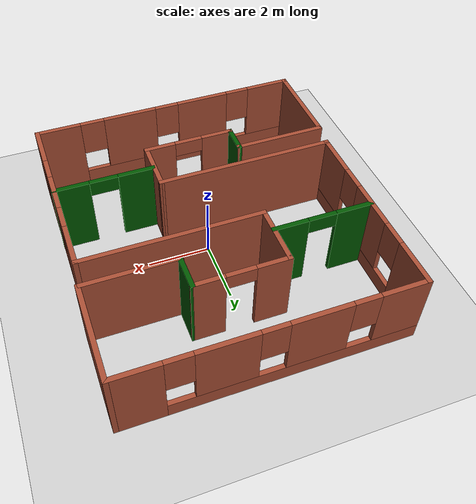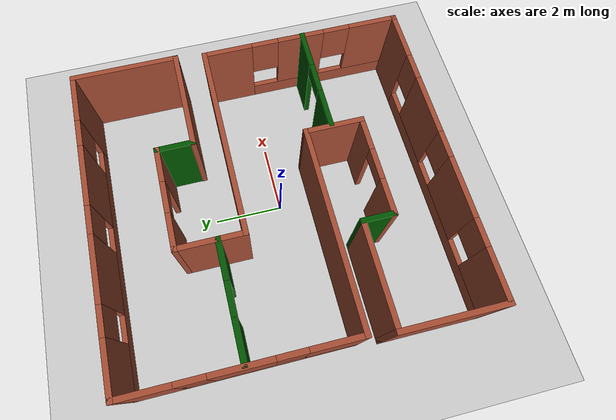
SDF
<sdf version="1.6">
 <world name="default">
  <light name="sun" type="directional">
   <pose>0 0 10 0 -0 0</pose>
   <diffuse>0.8 0.8 0.8 1</diffuse>
   <specular>0.2 0.2 0.2 1</specular>
   <attenuation>
    <range>1000</range>
    <constant>0.9</constant>
    <linear>0.01</linear>
    <quadratic>0.001</quadratic>
   </attenuation>
   <direction>-0.5 0.1 -0.9</direction>
  </light>
  <model name="ground_plane">
   <static>1</static>
   <link name="link">
    <collision name="collision">
     <geometry><plane><normal>0 0 1</normal><size>100 100</size></plane></geometry>
     <surface><friction><ode><mu>100</mu><mu2>50</mu2></ode></friction></surface>
    </collision>
    <visual name="visual">
     <cast_shadows>0</cast_shadows>
     <geometry><plane><normal>0 0 1</normal><size>100 100</size></plane></geometry>
     <material>
      <script><uri>file://media/materials/scripts/gazebo.material</uri><name>Gazebo/Grey</name></script>
     </material>
    </visual>
   </link>
  </model>
  <gravity>0 0 -9.8</gravity>
  <magnetic_field>6e-06 2.3e-05 -4.2e-05</magnetic_field>
  <atmosphere type="adiabatic"/>
  <physics name="default_physics" default="0" type="ode">
   <max_step_size>0.001</max_step_size>
   <real_time_factor>1</real_time_factor>
   <real_time_update_rate>1000</real_time_update_rate>
  </physics>
  <scene><ambient>0.4 0.4 0.4 1</ambient><background>0.7 0.7 0.7 1</background><shadows>1</shadows></scene>
  <spherical_coordinates>
   <surface_model>EARTH_WGS84</surface_model>
   <latitude_deg>0</latitude_deg>
   <longitude_deg>0</longitude_deg>
   <elevation>0</elevation>
   <heading_deg>0</heading_deg>
  </spherical_coordinates>
  <model name="MyWorld">
   <pose>-0.06346 0.25804 0 0 -0 0</pose>
   <link name="Wall_0">
    <collision name="Wall_0_Collision">
     <geometry><box><size>3 0.15 2.5</size></box></geometry>
     <pose>0 0 1.25 0 -0 0</pose>
    </collision>
    <visual name="Wall_0_Visual">
     <pose>0 0 1.25 0 -0 0</pose>
     <geometry><box><size>3 0.15 2.5</size></box></geometry>
     <material>
      <script><uri>file://media/materials/scripts/gazebo.material</uri><name>Gazebo/Bricks</name></script>
      <ambient>1 1 1 1</ambient>
     </material>
     <meta><layer>0</layer></meta>
    </visual>
    <pose>3.0376 1.84349 0 0 -0 0</pose>
   </link>
   <link name="Wall_1">
    <collision name="Wall_1_Collision">
     <geometry><box><size>3.156 0.15 2.5</size></box></geometry>
     <pose>0 0 1.25 0 -0 0</pose>
    </collision>
    <visual name="Wall_1_Visual">
     <pose>0 0 1.25 0 -0 0</pose>
     <geometry><box><size>3.156 0.15 2.5</size></box></geometry>
     <material>
      <script><uri>file://media/materials/scripts/gazebo.material</uri><name>Gazebo/Bricks</name></script>
      <ambient>1 1 1 1</ambient>
     </material>
     <meta><layer>0</layer></meta>
    </visual>
    <pose>4.47781 3.34647 0 0 -0 1.5708</pose>
   </link>
   <link name="Wall_10">
    <pose>4.37219 -1.92447 0 0 0 -1.5708</pose>
    <visual name="Wall_10_Visual_0">
     <pose>-2.25004 0 1.25 0 -0 0</pose>
     <geometry><box><size>1.49993 0.15 2.5</size></box></geometry>
     <material>
      <script><uri>file://media/materials/scripts/gazebo.material</uri><name>Gazebo/Bricks</name></script>
      <ambient>1 1 1 1</ambient>
     </material>
     <meta><layer>0</layer></meta>
    </visual>
    <collision name="Wall_10_Collision_0">
     <geometry><box><size>1.49993 0.15 2.5</size></box></geometry>
     <pose>-2.25004 0 1.25 0 -0 0</pose>
    </collision>
    <visual name="Wall_10_Visual_1">
     <pose>0.749964 0 0.25 0 -0 0</pose>
     <geometry><box><size>4.50007 0.15 0.5</size></box></geometry>
     <material>
      <script><uri>file://media/materials/scripts/gazebo.material</uri><name>Gazebo/Bricks</name></script>
      <ambient>1 1 1 1</ambient>
     </material>
     <meta><layer>0</layer></meta>
    </visual>
    <collision name="Wall_10_Collision_1">
     <geometry><box><size>4.50007 0.15 0.5</size></box></geometry>
     <pose>0.749964 0 0.25 0 -0 0</pose>
    </collision>
    <visual name="Wall_10_Visual_2">
     <pose>0.002562 0 1.5 0 -0 0</pose>
     <geometry><box><size>1.40527 0.15 2</size></box></geometry>
     <material>
      <script><uri>file://media/materials/scripts/gazebo.material</uri><name>Gazebo/Bricks</name></script>
      <ambient>1 1 1 1</ambient>
     </material>
     <meta><layer>0</layer></meta>
    </visual>
    <collision name="Wall_10_Collision_2">
     <geometry><box><size>1.40527 0.15 2</size></box></geometry>
     <pose>0.002562 0 1.5 0 -0 0</pose>
    </collision>
    <visual name="Wall_10_Visual_3">
     <pose>2.2526 0 1.5 0 -0 0</pose>
     <geometry><box><size>1.4948 0.15 2</size></box></geometry>
     <material>
      <script><uri>file://media/materials/scripts/gazebo.material</uri><name>Gazebo/Bricks</name></script>
      <ambient>1 1 1 1</ambient>
     </material>
     <meta><layer>0</layer></meta>
    </visual>
    <collision name="Wall_10_Collision_3">
     <geometry><box><size>1.4948 0.15 2</size></box></geometry>
     <pose>2.2526 0 1.5 0 -0 0</pose>
    </collision>
    <visual name="Wall_10_Visual_4">
     <pose>-1.10007 0 1.9 0 -0 0</pose>
     <geometry><box><size>0.8 0.15 1.2</size></box></geometry>
     <material>
      <script><uri>file://media/materials/scripts/gazebo.material</uri><name>Gazebo/Bricks</name></script>
      <ambient>1 1 1 1</ambient>
     </material>
     <meta><layer>0</layer></meta>
    </visual>
    <collision name="Wall_10_Collision_4">
     <geometry><box><size>0.8 0.15 1.2</size></box></geometry>
     <pose>-1.10007 0 1.9 0 -0 0</pose>
    </collision>
    <visual name="Wall_10_Visual_5">
     <pose>1.1052 0 1.9 0 -0 0</pose>
     <geometry><box><size>0.8 0.15 1.2</size></box></geometry>
     <material>
      <script><uri>file://media/materials/scripts/gazebo.material</uri><name>Gazebo/Bricks</name></script>
      <ambient>1 1 1 1</ambient>
     </material>
     <meta><layer>0</layer></meta>
    </visual>
    <collision name="Wall_10_Collision_5">
     <geometry><box><size>0.8 0.15 1.2</size></box></geometry>
     <pose>1.1052 0 1.9 0 -0 0</pose>
    </collision>
   </link>
   <link name="Wall_12">
    <pose>-0.052813 -4.84947 0 0 -0 3.14159</pose>
    <visual name="Wall_12_Visual_0">
     <pose>-3.74768 0 1.25 0 -0 0</pose>
     <geometry><box><size>1.50463 0.15 2.5</size></box></geometry>
     <material>
      <script><uri>file://media/materials/scripts/gazebo.material</uri><name>Gazebo/Bricks</name></script>
      <ambient>1 1 1 1</ambient>
     </material>
     <meta><layer>0</layer></meta>
    </visual>
    <collision name="Wall_12_Collision_0">
     <geometry><box><size>1.50463 0.15 2.5</size></box></geometry>
     <pose>-3.74768 0 1.25 0 -0 0</pose>
    </collision>
    <visual name="Wall_12_Visual_1">
     <pose>0.752316 0 0.25 0 -0 0</pose>
     <geometry><box><size>7.49537 0.15 0.5</size></box></geometry>
     <material>
      <script><uri>file://media/materials/scripts/gazebo.material</uri><name>Gazebo/Bricks</name></script>
      <ambient>1 1 1 1</ambient>
     </material>
     <meta><layer>0</layer></meta>
    </visual>
    <collision name="Wall_12_Collision_1">
     <geometry><box><size>7.49537 0.15 0.5</size></box></geometry>
     <pose>0.752316 0 0.25 0 -0 0</pose>
    </collision>
    <visual name="Wall_12_Visual_2">
     <pose>-1.29502 0 1.5 0 -0 0</pose>
     <geometry><box><size>1.8007 0.15 2</size></box></geometry>
     <material>
      <script><uri>file://media/materials/scripts/gazebo.material</uri><name>Gazebo/Bricks</name></script>
      <ambient>1 1 1 1</ambient>
     </material>
     <meta><layer>0</layer></meta>
    </visual>
    <collision name="Wall_12_Collision_2">
     <geometry><box><size>1.8007 0.15 2</size></box></geometry>
     <pose>-1.29502 0 1.5 0 -0 0</pose>
    </collision>
    <visual name="Wall_12_Visual_3">
     <pose>1.29807 0 1.5 0 -0 0</pose>
     <geometry><box><size>1.78549 0.15 2</size></box></geometry>
     <material>
      <script><uri>file://media/materials/scripts/gazebo.material</uri><name>Gazebo/Bricks</name></script>
      <ambient>1 1 1 1</ambient>
     </material>
     <meta><layer>0</layer></meta>
    </visual>
    <collision name="Wall_12_Collision_3">
     <geometry><box><size>1.78549 0.15 2</size></box></geometry>
     <pose>1.29807 0 1.5 0 -0 0</pose>
    </collision>
    <visual name="Wall_12_Visual_4">
     <pose>3.74541 0 1.5 0 -0 0</pose>
     <geometry><box><size>1.50918 0.15 2</size></box></geometry>
     <material>
      <script><uri>file://media/materials/scripts/gazebo.material</uri><name>Gazebo/Bricks</name></script>
      <ambient>1 1 1 1</ambient>
     </material>
     <meta><layer>0</layer></meta>
    </visual>
    <collision name="Wall_12_Collision_4">
     <geometry><box><size>1.50918 0.15 2</size></box></geometry>
     <pose>3.74541 0 1.5 0 -0 0</pose>
    </collision>
    <visual name="Wall_12_Visual_5">
     <pose>-2.59537 0 1.9 0 -0 0</pose>
     <geometry><box><size>0.8 0.15 1.2</size></box></geometry>
     <material>
      <script><uri>file://media/materials/scripts/gazebo.material</uri><name>Gazebo/Bricks</name></script>
      <ambient>1 1 1 1</ambient>
     </material>
     <meta><layer>0</layer></meta>
    </visual>
    <collision name="Wall_12_Collision_5">
     <geometry><box><size>0.8 0.15 1.2</size></box></geometry>
     <pose>-2.59537 0 1.9 0 -0 0</pose>
    </collision>
    <visual name="Wall_12_Visual_6">
     <pose>0.005328 0 1.9 0 -0 0</pose>
     <geometry><box><size>0.8 0.15 1.2</size></box></geometry>
     <material>
      <script><uri>file://media/materials/scripts/gazebo.material</uri><name>Gazebo/Bricks</name></script>
      <ambient>1 1 1 1</ambient>
     </material>
     <meta><layer>0</layer></meta>
    </visual>
    <collision name="Wall_12_Collision_6">
     <geometry><box><size>0.8 0.15 1.2</size></box></geometry>
     <pose>0.005328 0 1.9 0 -0 0</pose>
    </collision>
    <visual name="Wall_12_Visual_7">
     <pose>2.59082 0 1.9 0 -0 0</pose>
     <geometry><box><size>0.8 0.15 1.2</size></box></geometry>
     <material>
      <script><uri>file://media/materials/scripts/gazebo.material</uri><name>Gazebo/Bricks</name></script>
      <ambient>1 1 1 1</ambient>
     </material>
     <meta><layer>0</layer></meta>
    </visual>
    <collision name="Wall_12_Collision_7">
     <geometry><box><size>0.8 0.15 1.2</size></box></geometry>
     <pose>2.59082 0 1.9 0 -0 0</pose>
    </collision>
   </link>
   <link name="Wall_13">
    <collision name="Wall_13_Collision">
     <geometry><box><size>3 0.15 2.5</size></box></geometry>
     <pose>0 0 1.25 0 -0 0</pose>
    </collision>
    <visual name="Wall_13_Visual">
     <pose>0 0 1.25 0 -0 0</pose>
     <geometry><box><size>3 0.15 2.5</size></box></geometry>
     <material>
      <script><uri>file://media/materials/scripts/gazebo.material</uri><name>Gazebo/Bricks</name></script>
      <ambient>1 1 1 1</ambient>
     </material>
     <meta><layer>0</layer></meta>
    </visual>
    <pose>-4.47781 -3.42447 0 0 -0 1.5708</pose>
   </link>
   <link name="Wall_14">
    <collision name="Wall_14_Collision">
     <geometry><box><size>3 0.15 2.5</size></box></geometry>
     <pose>0 0 1.25 0 -0 0</pose>
    </collision>
    <visual name="Wall_14_Visual">
     <pose>0 0 1.25 0 -0 0</pose>
     <geometry><box><size>3 0.15 2.5</size></box></geometry>
     <material>
      <script><uri>file://media/materials/scripts/gazebo.material</uri><name>Gazebo/Bricks</name></script>
      <ambient>1 1 1 1</ambient>
     </material>
     <meta><layer>0</layer></meta>
    </visual>
    <pose>-3.05281 -1.99947 0 0 -0 0</pose>
   </link>
   <link name="Wall_15">
    <collision name="Wall_15_Collision">
     <geometry><box><size>1 0.15 2.5</size></box></geometry>
     <pose>0 0 1.25 0 -0 0</pose>
    </collision>
    <visual name="Wall_15_Visual">
     <pose>0 0 1.25 0 -0 0</pose>
     <geometry><box><size>1 0.15 2.5</size></box></geometry>
     <material>
      <script><uri>file://media/materials/scripts/gazebo.material</uri><name>Gazebo/Grey</name></script>
      <ambient>0 0.333333 0 1</ambient>
     </material>
     <meta><layer>0</layer></meta>
    </visual>
    <pose>-1.62781 -2.42447 0 0 0 -1.5708</pose>
   </link>
   <link name="Wall_16">
    <pose>-0.202813 -2.84947 0 0 -0 0</pose>
    <visual name="Wall_16_Visual_0">
     <pose>-0.963499 0 1.25 0 -0 0</pose>
     <geometry><box><size>1.073 0.15 2.5</size></box></geometry>
     <material>
      <script><uri>file://media/materials/scripts/gazebo.material</uri><name>Gazebo/Bricks</name></script>
      <ambient>1 1 1 1</ambient>
     </material>
     <meta><layer>0</layer></meta>
    </visual>
    <collision name="Wall_16_Collision_0">
     <geometry><box><size>1.073 0.15 2.5</size></box></geometry>
     <pose>-0.963499 0 1.25 0 -0 0</pose>
    </collision>
    <visual name="Wall_16_Visual_1">
     <pose>0.986501 0 1.25 0 -0 0</pose>
     <geometry><box><size>1.027 0.15 2.5</size></box></geometry>
     <material>
      <script><uri>file://media/materials/scripts/gazebo.material</uri><name>Gazebo/Bricks</name></script>
      <ambient>1 1 1 1</ambient>
     </material>
     <meta><layer>0</layer></meta>
    </visual>
    <collision name="Wall_16_Collision_1">
     <geometry><box><size>1.027 0.15 2.5</size></box></geometry>
     <pose>0.986501 0 1.25 0 -0 0</pose>
    </collision>
    <visual name="Wall_16_Visual_2">
     <pose>0.023002 0 2.25 0 -0 0</pose>
     <geometry><box><size>0.9 0.15 0.5</size></box></geometry>
     <material>
      <script><uri>file://media/materials/scripts/gazebo.material</uri><name>Gazebo/Bricks</name></script>
      <ambient>1 1 1 1</ambient>
     </material>
     <meta><layer>0</layer></meta>
    </visual>
    <collision name="Wall_16_Collision_2">
     <geometry><box><size>0.9 0.15 0.5</size></box></geometry>
     <pose>0.023002 0 2.25 0 -0 0</pose>
    </collision>
   </link>
   <link name="Wall_17">
    <collision name="Wall_17_Collision">
     <geometry><box><size>1.75 0.15 2.5</size></box></geometry>
     <pose>0 0 1.25 0 -0 0</pose>
    </collision>
    <visual name="Wall_17_Visual">
     <pose>0 0 1.25 0 -0 0</pose>
     <geometry><box><size>1.75 0.15 2.5</size></box></geometry>
     <material>
      <script><uri>file://media/materials/scripts/gazebo.material</uri><name>Gazebo/Bricks</name></script>
      <ambient>1 1 1 1</ambient>
     </material>
     <meta><layer>0</layer></meta>
    </visual>
    <pose>1.22219 -2.04947 0 0 -0 1.5708</pose>
   </link>
   <link name="Wall_18">
    <collision name="Wall_18_Collision">
     <geometry><box><size>5.74437 0.15 2.5</size></box></geometry>
     <pose>0 0 1.25 0 -0 0</pose>
    </collision>
    <visual name="Wall_18_Visual">
     <pose>0 0 1.25 0 -0 0</pose>
     <geometry><box><size>5.74437 0.15 2.5</size></box></geometry>
     <material>
      <script><uri>file://media/materials/scripts/gazebo.material</uri><name>Gazebo/Bricks</name></script>
      <ambient>1 1 1 1</ambient>
     </material>
     <meta><layer>0</layer></meta>
    </visual>
    <pose>-1.575 -1.25001 0 0 0 -3.1414</pose>
   </link>
   <link name="Wall_20">
    <pose>-2.77922 1.73067 0 0 -0 3.14159</pose>
    <visual name="Wall_20_Visual_0">
     <pose>-1.04446 0 1.25 0 -0 0</pose>
     <geometry><box><size>1.16108 0.15 2.5</size></box></geometry>
     <material>
      <script><uri>file://media/materials/scripts/gazebo.material</uri><name>Gazebo/Grey</name></script>
      <ambient>0 0.333333 0 1</ambient>
     </material>
     <meta><layer>0</layer></meta>
    </visual>
    <collision name="Wall_20_Collision_0">
     <geometry><box><size>1.16108 0.15 2.5</size></box></geometry>
     <pose>-1.04446 0 1.25 0 -0 0</pose>
    </collision>
    <visual name="Wall_20_Visual_1">
     <pose>1.03054 0 1.25 0 -0 0</pose>
     <geometry><box><size>1.18892 0.15 2.5</size></box></geometry>
     <material>
      <script><uri>file://media/materials/scripts/gazebo.material</uri><name>Gazebo/Grey</name></script>
      <ambient>0 0.333333 0 1</ambient>
     </material>
     <meta><layer>0</layer></meta>
    </visual>
    <collision name="Wall_20_Collision_1">
     <geometry><box><size>1.18892 0.15 2.5</size></box></geometry>
     <pose>1.03054 0 1.25 0 -0 0</pose>
    </collision>
    <visual name="Wall_20_Visual_2">
     <pose>-0.013916 0 2.25 0 -0 0</pose>
     <geometry><box><size>0.9 0.15 0.5</size></box></geometry>
     <material>
      <script><uri>file://media/materials/scripts/gazebo.material</uri><name>Gazebo/Grey</name></script>
      <ambient>0 0.333333 0 1</ambient>
     </material>
     <meta><layer>0</layer></meta>
    </visual>
    <collision name="Wall_20_Collision_2">
     <geometry><box><size>0.9 0.15 0.5</size></box></geometry>
     <pose>-0.013916 0 2.25 0 -0 0</pose>
    </collision>
   </link>
   <link name="Wall_24">
    <pose>2.83281 -1.98026 0 0 -0 3.14159</pose>
    <visual name="Wall_24_Visual_0">
     <pose>-1.04446 0 1.25 0 -0 0</pose>
     <geometry><box><size>1.16108 0.15 2.5</size></box></geometry>
     <material>
      <script><uri>file://media/materials/scripts/gazebo.material</uri><name>Gazebo/Grey</name></script>
      <ambient>0 0.333333 0 1</ambient>
     </material>
     <meta><layer>0</layer></meta>
    </visual>
    <collision name="Wall_24_Collision_0">
     <geometry><box><size>1.16108 0.15 2.5</size></box></geometry>
     <pose>-1.04446 0 1.25 0 -0 0</pose>
    </collision>
    <visual name="Wall_24_Visual_1">
     <pose>1.03054 0 1.25 0 -0 0</pose>
     <geometry><box><size>1.18892 0.15 2.5</size></box></geometry>
     <material>
      <script><uri>file://media/materials/scripts/gazebo.material</uri><name>Gazebo/Grey</name></script>
      <ambient>0 0.333333 0 1</ambient>
     </material>
     <meta><layer>0</layer></meta>
    </visual>
    <collision name="Wall_24_Collision_1">
     <geometry><box><size>1.18892 0.15 2.5</size></box></geometry>
     <pose>1.03054 0 1.25 0 -0 0</pose>
    </collision>
    <visual name="Wall_24_Visual_2">
     <pose>-0.013916 0 2.25 0 -0 0</pose>
     <geometry><box><size>0.9 0.15 0.5</size></box></geometry>
     <material>
      <script><uri>file://media/materials/scripts/gazebo.material</uri><name>Gazebo/Grey</name></script>
      <ambient>0 0.333333 0 1</ambient>
     </material>
     <meta><layer>0</layer></meta>
    </visual>
    <collision name="Wall_24_Collision_2">
     <geometry><box><size>0.9 0.15 0.5</size></box></geometry>
     <pose>-0.013916 0 2.25 0 -0 0</pose>
    </collision>
   </link>
   <link name="Wall_3">
    <pose>0.052813 4.84945 0 0 -0 3.14159</pose>
    <visual name="Wall_3_Visual_0">
     <pose>-3.7481 0 1.25 0 -0 0</pose>
     <geometry><box><size>1.5038 0.15 2.5</size></box></geometry>
     <material>
      <script><uri>file://media/materials/scripts/gazebo.material</uri><name>Gazebo/Bricks</name></script>
      <ambient>1 1 1 1</ambient>
     </material>
     <meta><layer>0</layer></meta>
    </visual>
    <collision name="Wall_3_Collision_0">
     <geometry><box><size>1.5038 0.15 2.5</size></box></geometry>
     <pose>-3.7481 0 1.25 0 -0 0</pose>
    </collision>
    <visual name="Wall_3_Visual_1">
     <pose>0.751898 0 0.25 0 -0 0</pose>
     <geometry><box><size>7.4962 0.15 0.5</size></box></geometry>
     <material>
      <script><uri>file://media/materials/scripts/gazebo.material</uri><name>Gazebo/Bricks</name></script>
      <ambient>1 1 1 1</ambient>
     </material>
     <meta><layer>0</layer></meta>
    </visual>
    <collision name="Wall_3_Collision_1">
     <geometry><box><size>7.4962 0.15 0.5</size></box></geometry>
     <pose>0.751898 0 0.25 0 -0 0</pose>
    </collision>
    <visual name="Wall_3_Visual_2">
     <pose>-1.30346 0 1.5 0 -0 0</pose>
     <geometry><box><size>1.78549 0.15 2</size></box></geometry>
     <material>
      <script><uri>file://media/materials/scripts/gazebo.material</uri><name>Gazebo/Bricks</name></script>
      <ambient>1 1 1 1</ambient>
     </material>
     <meta><layer>0</layer></meta>
    </visual>
    <collision name="Wall_3_Collision_2">
     <geometry><box><size>1.78549 0.15 2</size></box></geometry>
     <pose>-1.30346 0 1.5 0 -0 0</pose>
    </collision>
    <visual name="Wall_3_Visual_3">
     <pose>1.29724 0 1.5 0 -0 0</pose>
     <geometry><box><size>1.81591 0.15 2</size></box></geometry>
     <material>
      <script><uri>file://media/materials/scripts/gazebo.material</uri><name>Gazebo/Bricks</name></script>
      <ambient>1 1 1 1</ambient>
     </material>
     <meta><layer>0</layer></meta>
    </visual>
    <collision name="Wall_3_Collision_3">
     <geometry><box><size>1.81591 0.15 2</size></box></geometry>
     <pose>1.29724 0 1.5 0 -0 0</pose>
    </collision>
    <visual name="Wall_3_Visual_4">
     <pose>3.75259 0 1.5 0 -0 0</pose>
     <geometry><box><size>1.49481 0.15 2</size></box></geometry>
     <material>
      <script><uri>file://media/materials/scripts/gazebo.material</uri><name>Gazebo/Bricks</name></script>
      <ambient>1 1 1 1</ambient>
     </material>
     <meta><layer>0</layer></meta>
    </visual>
    <collision name="Wall_3_Collision_4">
     <geometry><box><size>1.49481 0.15 2</size></box></geometry>
     <pose>3.75259 0 1.5 0 -0 0</pose>
    </collision>
    <visual name="Wall_3_Visual_5">
     <pose>-2.5962 0 1.9 0 -0 0</pose>
     <geometry><box><size>0.8 0.15 1.2</size></box></geometry>
     <material>
      <script><uri>file://media/materials/scripts/gazebo.material</uri><name>Gazebo/Bricks</name></script>
      <ambient>1 1 1 1</ambient>
     </material>
     <meta><layer>0</layer></meta>
    </visual>
    <collision name="Wall_3_Collision_5">
     <geometry><box><size>0.8 0.15 1.2</size></box></geometry>
     <pose>-2.5962 0 1.9 0 -0 0</pose>
    </collision>
    <visual name="Wall_3_Visual_6">
     <pose>-0.010716 0 1.9 0 -0 0</pose>
     <geometry><box><size>0.8 0.15 1.2</size></box></geometry>
     <material>
      <script><uri>file://media/materials/scripts/gazebo.material</uri><name>Gazebo/Bricks</name></script>
      <ambient>1 1 1 1</ambient>
     </material>
     <meta><layer>0</layer></meta>
    </visual>
    <collision name="Wall_3_Collision_6">
     <geometry><box><size>0.8 0.15 1.2</size></box></geometry>
     <pose>-0.010716 0 1.9 0 -0 0</pose>
    </collision>
    <visual name="Wall_3_Visual_7">
     <pose>2.60519 0 1.9 0 -0 0</pose>
     <geometry><box><size>0.8 0.15 1.2</size></box></geometry>
     <material>
      <script><uri>file://media/materials/scripts/gazebo.material</uri><name>Gazebo/Bricks</name></script>
      <ambient>1 1 1 1</ambient>
     </material>
     <meta><layer>0</layer></meta>
    </visual>
    <collision name="Wall_3_Collision_7">
     <geometry><box><size>0.8 0.15 1.2</size></box></geometry>
     <pose>2.60519 0 1.9 0 -0 0</pose>
    </collision>
   </link>
   <link name="Wall_4">
    <pose>-4.37219 1.79945 0 0 0 -1.5708</pose>
    <visual name="Wall_4_Visual_0">
     <pose>-2.37448 0 1.25 0 -0 0</pose>
     <geometry><box><size>1.50104 0.15 2.5</size></box></geometry>
     <material>
      <script><uri>file://media/materials/scripts/gazebo.material</uri><name>Gazebo/Bricks</name></script>
      <ambient>1 1 1 1</ambient>
     </material>
     <meta><layer>0</layer></meta>
    </visual>
    <collision name="Wall_4_Collision_0">
     <geometry><box><size>1.50104 0.15 2.5</size></box></geometry>
     <pose>-2.37448 0 1.25 0 -0 0</pose>
    </collision>
    <visual name="Wall_4_Visual_1">
     <pose>0.75052 0 0.25 0 -0 0</pose>
     <geometry><box><size>4.74896 0.15 0.5</size></box></geometry>
     <material>
      <script><uri>file://media/materials/scripts/gazebo.material</uri><name>Gazebo/Bricks</name></script>
      <ambient>1 1 1 1</ambient>
     </material>
     <meta><layer>0</layer></meta>
    </visual>
    <collision name="Wall_4_Collision_1">
     <geometry><box><size>4.74896 0.15 0.5</size></box></geometry>
     <pose>0.75052 0 0.25 0 -0 0</pose>
    </collision>
    <visual name="Wall_4_Visual_2">
     <pose>0.000344 0 1.5 0 -0 0</pose>
     <geometry><box><size>1.64861 0.15 2</size></box></geometry>
     <material>
      <script><uri>file://media/materials/scripts/gazebo.material</uri><name>Gazebo/Bricks</name></script>
      <ambient>1 1 1 1</ambient>
     </material>
     <meta><layer>0</layer></meta>
    </visual>
    <collision name="Wall_4_Collision_2">
     <geometry><box><size>1.64861 0.15 2</size></box></geometry>
     <pose>0.000344 0 1.5 0 -0 0</pose>
    </collision>
    <visual name="Wall_4_Visual_3">
     <pose>2.37482 0 1.5 0 -0 0</pose>
     <geometry><box><size>1.50035 0.15 2</size></box></geometry>
     <material>
      <script><uri>file://media/materials/scripts/gazebo.material</uri><name>Gazebo/Bricks</name></script>
      <ambient>1 1 1 1</ambient>
     </material>
     <meta><layer>0</layer></meta>
    </visual>
    <collision name="Wall_4_Collision_3">
     <geometry><box><size>1.50035 0.15 2</size></box></geometry>
     <pose>2.37482 0 1.5 0 -0 0</pose>
    </collision>
    <visual name="Wall_4_Visual_4">
     <pose>-1.22396 0 1.9 0 -0 0</pose>
     <geometry><box><size>0.8 0.15 1.2</size></box></geometry>
     <material>
      <script><uri>file://media/materials/scripts/gazebo.material</uri><name>Gazebo/Bricks</name></script>
      <ambient>1 1 1 1</ambient>
     </material>
     <meta><layer>0</layer></meta>
    </visual>
    <collision name="Wall_4_Collision_4">
     <geometry><box><size>0.8 0.15 1.2</size></box></geometry>
     <pose>-1.22396 0 1.9 0 -0 0</pose>
    </collision>
    <visual name="Wall_4_Visual_5">
     <pose>1.22465 0 1.9 0 -0 0</pose>
     <geometry><box><size>0.8 0.15 1.2</size></box></geometry>
     <material>
      <script><uri>file://media/materials/scripts/gazebo.material</uri><name>Gazebo/Bricks</name></script>
      <ambient>1 1 1 1</ambient>
     </material>
     <meta><layer>0</layer></meta>
    </visual>
    <collision name="Wall_4_Collision_5">
     <geometry><box><size>0.8 0.15 1.2</size></box></geometry>
     <pose>1.22465 0 1.9 0 -0 0</pose>
    </collision>
   </link>
   <link name="Wall_6">
    <collision name="Wall_6_Collision">
     <geometry><box><size>1.15708 0.15 2.5</size></box></geometry>
     <pose>0 0 1.25 0 -0 0</pose>
    </collision>
    <visual name="Wall_6_Visual">
     <pose>0 0 1.25 0 -0 0</pose>
     <geometry><box><size>1.15708 0.15 2.5</size></box></geometry>
     <material>
      <script><uri>file://media/materials/scripts/gazebo.material</uri><name>Gazebo/Grey</name></script>
      <ambient>0 0.333333 0 1</ambient>
     </material>
     <meta><layer>0</layer></meta>
    </visual>
    <pose>1.625 2.34701 0 0 -0 1.57638</pose>
   </link>
   <link name="Wall_7">
    <pose>0.197187 2.85053 0 0 -0 3.14159</pose>
    <visual name="Wall_7_Visual_0">
     <pose>-0.984215 0 1.25 0 -0 0</pose>
     <geometry><box><size>1.03157 0.15 2.5</size></box></geometry>
     <material>
      <script><uri>file://media/materials/scripts/gazebo.material</uri><name>Gazebo/Bricks</name></script>
      <ambient>1 1 1 1</ambient>
     </material>
     <meta><layer>0</layer></meta>
    </visual>
    <collision name="Wall_7_Collision_0">
     <geometry><box><size>1.03157 0.15 2.5</size></box></geometry>
     <pose>-0.984215 0 1.25 0 -0 0</pose>
    </collision>
    <visual name="Wall_7_Visual_1">
     <pose>0.965785 0 1.25 0 -0 0</pose>
     <geometry><box><size>1.06843 0.15 2.5</size></box></geometry>
     <material>
      <script><uri>file://media/materials/scripts/gazebo.material</uri><name>Gazebo/Bricks</name></script>
      <ambient>1 1 1 1</ambient>
     </material>
     <meta><layer>0</layer></meta>
    </visual>
    <collision name="Wall_7_Collision_1">
     <geometry><box><size>1.06843 0.15 2.5</size></box></geometry>
     <pose>0.965785 0 1.25 0 -0 0</pose>
    </collision>
    <visual name="Wall_7_Visual_2">
     <pose>-0.018429 0 2.25 0 -0 0</pose>
     <geometry><box><size>0.9 0.15 0.5</size></box></geometry>
     <material>
      <script><uri>file://media/materials/scripts/gazebo.material</uri><name>Gazebo/Bricks</name></script>
      <ambient>1 1 1 1</ambient>
     </material>
     <meta><layer>0</layer></meta>
    </visual>
    <collision name="Wall_7_Collision_2">
     <geometry><box><size>0.9 0.15 0.5</size></box></geometry>
     <pose>-0.018429 0 2.25 0 -0 0</pose>
    </collision>
   </link>
   <link name="Wall_8">
    <collision name="Wall_8_Collision">
     <geometry><box><size>2 0.15 2.5</size></box></geometry>
     <pose>0 0 1.25 0 -0 0</pose>
    </collision>
    <visual name="Wall_8_Visual">
     <pose>0 0 1.25 0 -0 0</pose>
     <geometry><box><size>2 0.15 2.5</size></box></geometry>
     <material>
      <script><uri>file://media/materials/scripts/gazebo.material</uri><name>Gazebo/Bricks</name></script>
      <ambient>1 1 1 1</ambient>
     </material>
     <meta><layer>0</layer></meta>
    </visual>
    <pose>-1.22781 1.92553 0 0 0 -1.5708</pose>
   </link>
   <link name="Wall_9">
    <collision name="Wall_9_Collision">
     <geometry><box><size>5.75 0.15 2.5</size></box></geometry>
     <pose>0 0 1.25 0 -0 0</pose>
    </collision>
    <visual name="Wall_9_Visual">
     <pose>0 0 1.25 0 -0 0</pose>
     <geometry><box><size>5.75 0.15 2.5</size></box></geometry>
     <material>
      <script><uri>file://media/materials/scripts/gazebo.material</uri><name>Gazebo/Bricks</name></script>
      <ambient>1 1 1 1</ambient>
     </material>
     <meta><layer>0</layer></meta>
    </visual>
    <pose>1.57219 1.00053 0 0 -0 0</pose>
   </link>
   <static>1</static>
  </model>
 </world>
</sdf>
